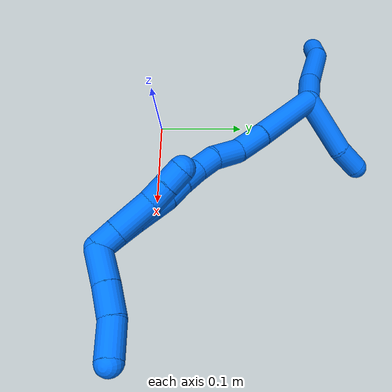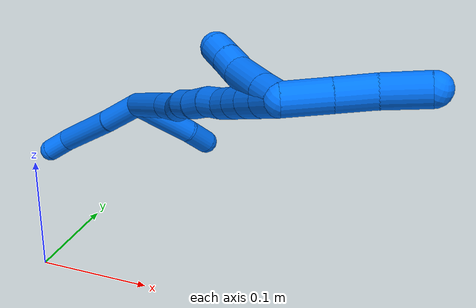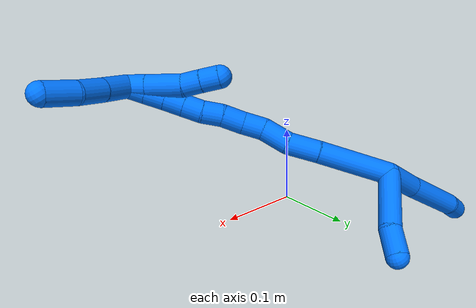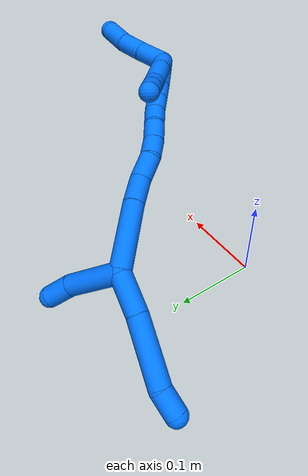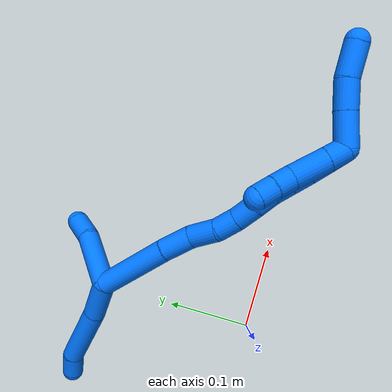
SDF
<sdf version="1.7">
 <world name="default">
  <model name="14">
   <static>0</static>
   <link name="14">
    <collision name="collision-cylinder-e_1_2_8">
     <pose>-0.012112 -0.000657 -0.019685 3.10825 -0.551323 -3.02386</pose>
     <geometry><cylinder><radius>0.0125</radius><length>0.046245</length></cylinder></geometry>
     <surface>
      <friction><ode><mu>1.16</mu><mu2>1.16</mu2><slip1>0</slip1><slip2>0</slip2></ode></friction>
      <contact><ode><kp>1e+06</kp><kd>1</kd><max_vel>0</max_vel><min_depth>0.001</min_depth></ode></contact>
     </surface>
    </collision>
    <visual name="visual-cylinder-e_1_2_8">
     <pose>-0.012112 -0.000657 -0.019685 3.10825 -0.551323 -3.02386</pose>
     <geometry><cylinder><radius>0.0125</radius><length>0.046245</length></cylinder></geometry>
     <material><ambient>0 0.462745 1 1</ambient></material>
    </visual>
    <collision name="collision-cylinder-e_2_8_9">
     <pose>-0.04427 0.001814 -0.071086 -3.04331 -0.561489 2.80374</pose>
     <geometry><cylinder><radius>0.0125</radius><length>0.075298</length></cylinder></geometry>
     <surface>
      <friction><ode><mu>1.16</mu><mu2>1.16</mu2><slip1>0</slip1><slip2>0</slip2></ode></friction>
      <contact><ode><kp>1e+06</kp><kd>1</kd><max_vel>0</max_vel><min_depth>0.001</min_depth></ode></contact>
     </surface>
    </collision>
    <visual name="visual-cylinder-e_2_8_9">
     <pose>-0.04427 0.001814 -0.071086 -3.04331 -0.561489 2.80374</pose>
     <geometry><cylinder><radius>0.0125</radius><length>0.075298</length></cylinder></geometry>
     <material><ambient>0 0.462745 1 1</ambient></material>
    </visual>
    <collision name="collision-cylinder-e_3_9_6">
     <pose>-0.071897 0.001817 -0.114429 2.87917 -0.56191 -2.2838</pose>
     <geometry><cylinder><radius>0.0125</radius><length>0.028457</length></cylinder></geometry>
     <surface>
      <friction><ode><mu>1.16</mu><mu2>1.16</mu2><slip1>0</slip1><slip2>0</slip2></ode></friction>
      <contact><ode><kp>1e+06</kp><kd>1</kd><max_vel>0</max_vel><min_depth>0.001</min_depth></ode></contact>
     </surface>
    </collision>
    <visual name="visual-cylinder-e_3_9_6">
     <pose>-0.071897 0.001817 -0.114429 2.87917 -0.56191 -2.2838</pose>
     <geometry><cylinder><radius>0.0125</radius><length>0.028457</length></cylinder></geometry>
     <material><ambient>0 0.462745 1 1</ambient></material>
    </visual>
    <collision name="collision-cylinder-e_1_2_10">
     <pose>0.029405 0.013862 -0.01145 -2.26118 1.02202 -1.74416</pose>
     <geometry><cylinder><radius>0.0125</radius><length>0.068933</length></cylinder></geometry>
     <surface>
      <friction><ode><mu>1.16</mu><mu2>1.16</mu2><slip1>0</slip1><slip2>0</slip2></ode></friction>
      <contact><ode><kp>1e+06</kp><kd>1</kd><max_vel>0</max_vel><min_depth>0.001</min_depth></ode></contact>
     </surface>
    </collision>
    <visual name="visual-cylinder-e_1_2_10">
     <pose>0.029405 0.013862 -0.01145 -2.26118 1.02202 -1.74416</pose>
     <geometry><cylinder><radius>0.0125</radius><length>0.068933</length></cylinder></geometry>
     <material><ambient>0 0.462745 1 1</ambient></material>
    </visual>
    <collision name="collision-cylinder-e_2_10_5">
     <pose>0.069765 0.035602 -0.030596 -2.34449 0.782681 -1.5505</pose>
     <geometry><cylinder><radius>0.0125</radius><length>0.031067</length></cylinder></geometry>
     <surface>
      <friction><ode><mu>1.16</mu><mu2>1.16</mu2><slip1>0</slip1><slip2>0</slip2></ode></friction>
      <contact><ode><kp>1e+06</kp><kd>1</kd><max_vel>0</max_vel><min_depth>0.001</min_depth></ode></contact>
     </surface>
    </collision>
    <visual name="visual-cylinder-e_2_10_5">
     <pose>0.069765 0.035602 -0.030596 -2.34449 0.782681 -1.5505</pose>
     <geometry><cylinder><radius>0.0125</radius><length>0.031067</length></cylinder></geometry>
     <material><ambient>0 0.462745 1 1</ambient></material>
    </visual>
    <collision name="collision-cylinder-e_1_2_11">
     <pose>0.017986 -0.023821 0.028627 0.694018 0.449916 0.165134</pose>
     <geometry><cylinder><radius>0.0125</radius><length>0.082716</length></cylinder></geometry>
     <surface>
      <friction><ode><mu>1.16</mu><mu2>1.16</mu2><slip1>0</slip1><slip2>0</slip2></ode></friction>
      <contact><ode><kp>1e+06</kp><kd>1</kd><max_vel>0</max_vel><min_depth>0.001</min_depth></ode></contact>
     </surface>
    </collision>
    <visual name="visual-cylinder-e_1_2_11">
     <pose>0.017986 -0.023821 0.028627 0.694018 0.449916 0.165134</pose>
     <geometry><cylinder><radius>0.0125</radius><length>0.082716</length></cylinder></geometry>
     <material><ambient>0 0.462745 1 1</ambient></material>
    </visual>
    <collision name="collision-cylinder-e_2_11_12">
     <pose>0.043257 -0.05865 0.068483 0.775493 0.433856 0.179546</pose>
     <geometry><cylinder><radius>0.0125</radius><length>0.034659</length></cylinder></geometry>
     <surface>
      <friction><ode><mu>1.16</mu><mu2>1.16</mu2><slip1>0</slip1><slip2>0</slip2></ode></friction>
      <contact><ode><kp>1e+06</kp><kd>1</kd><max_vel>0</max_vel><min_depth>0.001</min_depth></ode></contact>
     </surface>
    </collision>
    <visual name="visual-cylinder-e_2_11_12">
     <pose>0.043257 -0.05865 0.068483 0.775493 0.433856 0.179546</pose>
     <geometry><cylinder><radius>0.0125</radius><length>0.034659</length></cylinder></geometry>
     <material><ambient>0 0.462745 1 1</ambient></material>
    </visual>
    <collision name="collision-cylinder-e_3_12_13">
     <pose>0.053038 -0.079694 0.091253 0.715696 0.161775 0.060609</pose>
     <geometry><cylinder><radius>0.0125</radius><length>0.030994</length></cylinder></geometry>
     <surface>
      <friction><ode><mu>1.16</mu><mu2>1.16</mu2><slip1>0</slip1><slip2>0</slip2></ode></friction>
      <contact><ode><kp>1e+06</kp><kd>1</kd><max_vel>0</max_vel><min_depth>0.001</min_depth></ode></contact>
     </surface>
    </collision>
    <visual name="visual-cylinder-e_3_12_13">
     <pose>0.053038 -0.079694 0.091253 0.715696 0.161775 0.060609</pose>
     <geometry><cylinder><radius>0.0125</radius><length>0.030994</length></cylinder></geometry>
     <material><ambient>0 0.462745 1 1</ambient></material>
    </visual>
    <collision name="collision-cylinder-e_4_13_14">
     <pose>0.060736 -0.096703 0.110923 0.709091 0.452153 0.169883</pose>
     <geometry><cylinder><radius>0.0125</radius><length>0.023813</length></cylinder></geometry>
     <surface>
      <friction><ode><mu>1.16</mu><mu2>1.16</mu2><slip1>0</slip1><slip2>0</slip2></ode></friction>
      <contact><ode><kp>1e+06</kp><kd>1</kd><max_vel>0</max_vel><min_depth>0.001</min_depth></ode></contact>
     </surface>
    </collision>
    <visual name="visual-cylinder-e_4_13_14">
     <pose>0.060736 -0.096703 0.110923 0.709091 0.452153 0.169883</pose>
     <geometry><cylinder><radius>0.0125</radius><length>0.023813</length></cylinder></geometry>
     <material><ambient>0 0.462745 1 1</ambient></material>
    </visual>
    <collision name="collision-cylinder-e_5_14_15">
     <pose>0.071426 -0.109188 0.128179 0.543282 0.475364 0.134748</pose>
     <geometry><cylinder><radius>0.0125</radius><length>0.023984</length></cylinder></geometry>
     <surface>
      <friction><ode><mu>1.16</mu><mu2>1.16</mu2><slip1>0</slip1><slip2>0</slip2></ode></friction>
      <contact><ode><kp>1e+06</kp><kd>1</kd><max_vel>0</max_vel><min_depth>0.001</min_depth></ode></contact>
     </surface>
    </collision>
    <visual name="visual-cylinder-e_5_14_15">
     <pose>0.071426 -0.109188 0.128179 0.543282 0.475364 0.134748</pose>
     <geometry><cylinder><radius>0.0125</radius><length>0.023984</length></cylinder></geometry>
     <material><ambient>0 0.462745 1 1</ambient></material>
    </visual>
    <collision name="collision-cylinder-e_6_15_16">
     <pose>0.083121 -0.120369 0.144264 0.683639 0.605025 0.221169</pose>
     <geometry><cylinder><radius>0.0125</radius><length>0.021823</length></cylinder></geometry>
     <surface>
      <friction><ode><mu>1.16</mu><mu2>1.16</mu2><slip1>0</slip1><slip2>0</slip2></ode></friction>
      <contact><ode><kp>1e+06</kp><kd>1</kd><max_vel>0</max_vel><min_depth>0.001</min_depth></ode></contact>
     </surface>
    </collision>
    <visual name="visual-cylinder-e_6_15_16">
     <pose>0.083121 -0.120369 0.144264 0.683639 0.605025 0.221169</pose>
     <geometry><cylinder><radius>0.0125</radius><length>0.021823</length></cylinder></geometry>
     <material><ambient>0 0.462745 1 1</ambient></material>
    </visual>
    <collision name="collision-cylinder-e_7_16_17">
     <pose>0.093521 -0.131643 0.158554 0.652756 0.426498 0.14633</pose>
     <geometry><cylinder><radius>0.0125</radius><length>0.020275</length></cylinder></geometry>
     <surface>
      <friction><ode><mu>1.16</mu><mu2>1.16</mu2><slip1>0</slip1><slip2>0</slip2></ode></friction>
      <contact><ode><kp>1e+06</kp><kd>1</kd><max_vel>0</max_vel><min_depth>0.001</min_depth></ode></contact>
     </surface>
    </collision>
    <visual name="visual-cylinder-e_7_16_17">
     <pose>0.093521 -0.131643 0.158554 0.652756 0.426498 0.14633</pose>
     <geometry><cylinder><radius>0.0125</radius><length>0.020275</length></cylinder></geometry>
     <material><ambient>0 0.462745 1 1</ambient></material>
    </visual>
    <collision name="collision-cylinder-e_8_17_18">
     <pose>0.101981 -0.142946 0.173309 0.65456 0.427745 0.147203</pose>
     <geometry><cylinder><radius>0.0125</radius><length>0.020567</length></cylinder></geometry>
     <surface>
      <friction><ode><mu>1.16</mu><mu2>1.16</mu2><slip1>0</slip1><slip2>0</slip2></ode></friction>
      <contact><ode><kp>1e+06</kp><kd>1</kd><max_vel>0</max_vel><min_depth>0.001</min_depth></ode></contact>
     </surface>
    </collision>
    <visual name="visual-cylinder-e_8_17_18">
     <pose>0.101981 -0.142946 0.173309 0.65456 0.427745 0.147203</pose>
     <geometry><cylinder><radius>0.0125</radius><length>0.020567</length></cylinder></geometry>
     <material><ambient>0 0.462745 1 1</ambient></material>
    </visual>
    <collision name="collision-cylinder-e_9_18_19">
     <pose>0.110864 -0.154311 0.188249 0.646069 0.455937 0.155019</pose>
     <geometry><cylinder><radius>0.0125</radius><length>0.020972</length></cylinder></geometry>
     <surface>
      <friction><ode><mu>1.16</mu><mu2>1.16</mu2><slip1>0</slip1><slip2>0</slip2></ode></friction>
      <contact><ode><kp>1e+06</kp><kd>1</kd><max_vel>0</max_vel><min_depth>0.001</min_depth></ode></contact>
     </surface>
    </collision>
    <visual name="visual-cylinder-e_9_18_19">
     <pose>0.110864 -0.154311 0.188249 0.646069 0.455937 0.155019</pose>
     <geometry><cylinder><radius>0.0125</radius><length>0.020972</length></cylinder></geometry>
     <material><ambient>0 0.462745 1 1</ambient></material>
    </visual>
    <collision name="collision-cylinder-e_10_19_1">
     <pose>0.119989 -0.165324 0.203052 0.632954 0.462758 0.154005</pose>
     <geometry><cylinder><radius>0.0125</radius><length>0.020197</length></cylinder></geometry>
     <surface>
      <friction><ode><mu>1.16</mu><mu2>1.16</mu2><slip1>0</slip1><slip2>0</slip2></ode></friction>
      <contact><ode><kp>1e+06</kp><kd>1</kd><max_vel>0</max_vel><min_depth>0.001</min_depth></ode></contact>
     </surface>
    </collision>
    <visual name="visual-cylinder-e_10_19_1">
     <pose>0.119989 -0.165324 0.203052 0.632954 0.462758 0.154005</pose>
     <geometry><cylinder><radius>0.0125</radius><length>0.020197</length></cylinder></geometry>
     <material><ambient>0 0.462745 1 1</ambient></material>
    </visual>
    <collision name="collision-cylinder-e_1_1_20">
     <pose>0.139513 -0.164826 0.217866 -0.660071 1.00528 -0.37228</pose>
     <geometry><cylinder><radius>0.0125</radius><length>0.035571</length></cylinder></geometry>
     <surface>
      <friction><ode><mu>1.16</mu><mu2>1.16</mu2><slip1>0</slip1><slip2>0</slip2></ode></friction>
      <contact><ode><kp>1e+06</kp><kd>1</kd><max_vel>0</max_vel><min_depth>0.001</min_depth></ode></contact>
     </surface>
    </collision>
    <visual name="visual-cylinder-e_1_1_20">
     <pose>0.139513 -0.164826 0.217866 -0.660071 1.00528 -0.37228</pose>
     <geometry><cylinder><radius>0.0125</radius><length>0.035571</length></cylinder></geometry>
     <material><ambient>0 0.462745 1 1</ambient></material>
    </visual>
    <collision name="collision-cylinder-e_2_20_21">
     <pose>0.1672 -0.154591 0.232198 -0.573125 1.00214 -0.320021</pose>
     <geometry><cylinder><radius>0.0125</radius><length>0.030073</length></cylinder></geometry>
     <surface>
      <friction><ode><mu>1.16</mu><mu2>1.16</mu2><slip1>0</slip1><slip2>0</slip2></ode></friction>
      <contact><ode><kp>1e+06</kp><kd>1</kd><max_vel>0</max_vel><min_depth>0.001</min_depth></ode></contact>
     </surface>
    </collision>
    <visual name="visual-cylinder-e_2_20_21">
     <pose>0.1672 -0.154591 0.232198 -0.573125 1.00214 -0.320021</pose>
     <geometry><cylinder><radius>0.0125</radius><length>0.030073</length></cylinder></geometry>
     <material><ambient>0 0.462745 1 1</ambient></material>
    </visual>
    <collision name="collision-cylinder-e_3_21_4">
     <pose>0.194316 -0.148983 0.248217 -0.131355 0.999038 -0.07175</pose>
     <geometry><cylinder><radius>0.0125</radius><length>0.034356</length></cylinder></geometry>
     <surface>
      <friction><ode><mu>1.16</mu><mu2>1.16</mu2><slip1>0</slip1><slip2>0</slip2></ode></friction>
      <contact><ode><kp>1e+06</kp><kd>1</kd><max_vel>0</max_vel><min_depth>0.001</min_depth></ode></contact>
     </surface>
    </collision>
    <visual name="visual-cylinder-e_3_21_4">
     <pose>0.194316 -0.148983 0.248217 -0.131355 0.999038 -0.07175</pose>
     <geometry><cylinder><radius>0.0125</radius><length>0.034356</length></cylinder></geometry>
     <material><ambient>0 0.462745 1 1</ambient></material>
    </visual>
    <collision name="collision-cylinder-e_1_1_22">
     <pose>0.118461 -0.163383 0.205927 -2.11514 -0.616547 1.02854</pose>
     <geometry><cylinder><radius>0.0125</radius><length>0.020879</length></cylinder></geometry>
     <surface>
      <friction><ode><mu>1.16</mu><mu2>1.16</mu2><slip1>0</slip1><slip2>0</slip2></ode></friction>
      <contact><ode><kp>1e+06</kp><kd>1</kd><max_vel>0</max_vel><min_depth>0.001</min_depth></ode></contact>
     </surface>
    </collision>
    <visual name="visual-cylinder-e_1_1_22">
     <pose>0.118461 -0.163383 0.205927 -2.11514 -0.616547 1.02854</pose>
     <geometry><cylinder><radius>0.0125</radius><length>0.020879</length></cylinder></geometry>
     <material><ambient>0 0.462745 1 1</ambient></material>
    </visual>
    <collision name="collision-cylinder-e_2_22_23">
     <pose>0.101372 -0.14213 0.19369 -2.08159 -0.6042 0.977654</pose>
     <geometry><cylinder><radius>0.0125</radius><length>0.038909</length></cylinder></geometry>
     <surface>
      <friction><ode><mu>1.16</mu><mu2>1.16</mu2><slip1>0</slip1><slip2>0</slip2></ode></friction>
      <contact><ode><kp>1e+06</kp><kd>1</kd><max_vel>0</max_vel><min_depth>0.001</min_depth></ode></contact>
     </surface>
    </collision>
    <visual name="visual-cylinder-e_2_22_23">
     <pose>0.101372 -0.14213 0.19369 -2.08159 -0.6042 0.977654</pose>
     <geometry><cylinder><radius>0.0125</radius><length>0.038909</length></cylinder></geometry>
     <material><ambient>0 0.462745 1 1</ambient></material>
    </visual>
    <collision name="collision-cylinder-e_3_23_24">
     <pose>0.083625 -0.120963 0.183654 -1.86849 -0.726652 0.950118</pose>
     <geometry><cylinder><radius>0.0125</radius><length>0.020154</length></cylinder></geometry>
     <surface>
      <friction><ode><mu>1.16</mu><mu2>1.16</mu2><slip1>0</slip1><slip2>0</slip2></ode></friction>
      <contact><ode><kp>1e+06</kp><kd>1</kd><max_vel>0</max_vel><min_depth>0.001</min_depth></ode></contact>
     </surface>
    </collision>
    <visual name="visual-cylinder-e_3_23_24">
     <pose>0.083625 -0.120963 0.183654 -1.86849 -0.726652 0.950118</pose>
     <geometry><cylinder><radius>0.0125</radius><length>0.020154</length></cylinder></geometry>
     <material><ambient>0 0.462745 1 1</ambient></material>
    </visual>
    <collision name="collision-cylinder-e_4_24_3">
     <pose>0.070207 -0.106708 0.179076 -1.89474 -0.734755 0.982794</pose>
     <geometry><cylinder><radius>0.0125</radius><length>0.020058</length></cylinder></geometry>
     <surface>
      <friction><ode><mu>1.16</mu><mu2>1.16</mu2><slip1>0</slip1><slip2>0</slip2></ode></friction>
      <contact><ode><kp>1e+06</kp><kd>1</kd><max_vel>0</max_vel><min_depth>0.001</min_depth></ode></contact>
     </surface>
    </collision>
    <visual name="visual-cylinder-e_4_24_3">
     <pose>0.070207 -0.106708 0.179076 -1.89474 -0.734755 0.982794</pose>
     <geometry><cylinder><radius>0.0125</radius><length>0.020058</length></cylinder></geometry>
     <material><ambient>0 0.462745 1 1</ambient></material>
    </visual>
    <collision name="collision-sphere-3">
     <pose>0.063483 -0.099654 0.176707 0 -0 0</pose>
     <geometry><sphere><radius>0.0125</radius></sphere></geometry>
     <surface>
      <friction><ode><mu>1.16</mu><mu2>1.16</mu2><slip1>0</slip1><slip2>0</slip2></ode></friction>
      <contact><ode><kp>1e+06</kp><kd>1</kd><max_vel>0</max_vel><min_depth>0.001</min_depth></ode></contact>
     </surface>
    </collision>
    <visual name="visual-sphere-3">
     <pose>0.063483 -0.099654 0.176707 0 -0 0</pose>
     <geometry><sphere><radius>0.0125</radius></sphere></geometry>
     <material><ambient>0 0.462745 1 1</ambient></material>
    </visual>
    <collision name="collision-sphere-24">
     <pose>0.07693 -0.113763 0.181444 0 -0 0</pose>
     <geometry><sphere><radius>0.0125</radius></sphere></geometry>
     <surface>
      <friction><ode><mu>1.16</mu><mu2>1.16</mu2><slip1>0</slip1><slip2>0</slip2></ode></friction>
      <contact><ode><kp>1e+06</kp><kd>1</kd><max_vel>0</max_vel><min_depth>0.001</min_depth></ode></contact>
     </surface>
    </collision>
    <visual name="visual-sphere-24">
     <pose>0.07693 -0.113763 0.181444 0 -0 0</pose>
     <geometry><sphere><radius>0.0125</radius></sphere></geometry>
     <material><ambient>0 0.462745 1 1</ambient></material>
    </visual>
    <collision name="collision-sphere-23">
     <pose>0.09032 -0.128164 0.185863 0 -0 0</pose>
     <geometry><sphere><radius>0.0125</radius></sphere></geometry>
     <surface>
      <friction><ode><mu>1.16</mu><mu2>1.16</mu2><slip1>0</slip1><slip2>0</slip2></ode></friction>
      <contact><ode><kp>1e+06</kp><kd>1</kd><max_vel>0</max_vel><min_depth>0.001</min_depth></ode></contact>
     </surface>
    </collision>
    <visual name="visual-sphere-23">
     <pose>0.09032 -0.128164 0.185863 0 -0 0</pose>
     <geometry><sphere><radius>0.0125</radius></sphere></geometry>
     <material><ambient>0 0.462745 1 1</ambient></material>
    </visual>
    <collision name="collision-sphere-22">
     <pose>0.112424 -0.156097 0.201517 0 -0 0</pose>
     <geometry><sphere><radius>0.0125</radius></sphere></geometry>
     <surface>
      <friction><ode><mu>1.16</mu><mu2>1.16</mu2><slip1>0</slip1><slip2>0</slip2></ode></friction>
      <contact><ode><kp>1e+06</kp><kd>1</kd><max_vel>0</max_vel><min_depth>0.001</min_depth></ode></contact>
     </surface>
    </collision>
    <visual name="visual-sphere-22">
     <pose>0.112424 -0.156097 0.201517 0 -0 0</pose>
     <geometry><sphere><radius>0.0125</radius></sphere></geometry>
     <material><ambient>0 0.462745 1 1</ambient></material>
    </visual>
    <collision name="collision-sphere-4">
     <pose>0.208762 -0.147765 0.257432 0 -0 0</pose>
     <geometry><sphere><radius>0.0125</radius></sphere></geometry>
     <surface>
      <friction><ode><mu>1.16</mu><mu2>1.16</mu2><slip1>0</slip1><slip2>0</slip2></ode></friction>
      <contact><ode><kp>1e+06</kp><kd>1</kd><max_vel>0</max_vel><min_depth>0.001</min_depth></ode></contact>
     </surface>
    </collision>
    <visual name="visual-sphere-4">
     <pose>0.208762 -0.147765 0.257432 0 -0 0</pose>
     <geometry><sphere><radius>0.0125</radius></sphere></geometry>
     <material><ambient>0 0.462745 1 1</ambient></material>
    </visual>
    <collision name="collision-sphere-21">
     <pose>0.17987 -0.1502 0.239001 0 -0 0</pose>
     <geometry><sphere><radius>0.0125</radius></sphere></geometry>
     <surface>
      <friction><ode><mu>1.16</mu><mu2>1.16</mu2><slip1>0</slip1><slip2>0</slip2></ode></friction>
      <contact><ode><kp>1e+06</kp><kd>1</kd><max_vel>0</max_vel><min_depth>0.001</min_depth></ode></contact>
     </surface>
    </collision>
    <visual name="visual-sphere-21">
     <pose>0.17987 -0.1502 0.239001 0 -0 0</pose>
     <geometry><sphere><radius>0.0125</radius></sphere></geometry>
     <material><ambient>0 0.462745 1 1</ambient></material>
    </visual>
    <collision name="collision-sphere-20">
     <pose>0.15453 -0.158982 0.225395 0 -0 0</pose>
     <geometry><sphere><radius>0.0125</radius></sphere></geometry>
     <surface>
      <friction><ode><mu>1.16</mu><mu2>1.16</mu2><slip1>0</slip1><slip2>0</slip2></ode></friction>
      <contact><ode><kp>1e+06</kp><kd>1</kd><max_vel>0</max_vel><min_depth>0.001</min_depth></ode></contact>
     </surface>
    </collision>
    <visual name="visual-sphere-20">
     <pose>0.15453 -0.158982 0.225395 0 -0 0</pose>
     <geometry><sphere><radius>0.0125</radius></sphere></geometry>
     <material><ambient>0 0.462745 1 1</ambient></material>
    </visual>
    <collision name="collision-sphere-5">
     <pose>0.080719 0.043481 -0.038292 0 -0 0</pose>
     <geometry><sphere><radius>0.0125</radius></sphere></geometry>
     <surface>
      <friction><ode><mu>1.16</mu><mu2>1.16</mu2><slip1>0</slip1><slip2>0</slip2></ode></friction>
      <contact><ode><kp>1e+06</kp><kd>1</kd><max_vel>0</max_vel><min_depth>0.001</min_depth></ode></contact>
     </surface>
    </collision>
    <visual name="visual-sphere-5">
     <pose>0.080719 0.043481 -0.038292 0 -0 0</pose>
     <geometry><sphere><radius>0.0125</radius></sphere></geometry>
     <material><ambient>0 0.462745 1 1</ambient></material>
    </visual>
    <collision name="collision-sphere-10">
     <pose>0.058811 0.027724 -0.022899 0 -0 0</pose>
     <geometry><sphere><radius>0.0125</radius></sphere></geometry>
     <surface>
      <friction><ode><mu>1.16</mu><mu2>1.16</mu2><slip1>0</slip1><slip2>0</slip2></ode></friction>
      <contact><ode><kp>1e+06</kp><kd>1</kd><max_vel>0</max_vel><min_depth>0.001</min_depth></ode></contact>
     </surface>
    </collision>
    <visual name="visual-sphere-10">
     <pose>0.058811 0.027724 -0.022899 0 -0 0</pose>
     <geometry><sphere><radius>0.0125</radius></sphere></geometry>
     <material><ambient>0 0.462745 1 1</ambient></material>
    </visual>
    <collision name="collision-sphere-6">
     <pose>-0.079478 -0.001306 -0.126058 0 -0 0</pose>
     <geometry><sphere><radius>0.0125</radius></sphere></geometry>
     <surface>
      <friction><ode><mu>1.16</mu><mu2>1.16</mu2><slip1>0</slip1><slip2>0</slip2></ode></friction>
      <contact><ode><kp>1e+06</kp><kd>1</kd><max_vel>0</max_vel><min_depth>0.001</min_depth></ode></contact>
     </surface>
    </collision>
    <visual name="visual-sphere-6">
     <pose>-0.079478 -0.001306 -0.126058 0 -0 0</pose>
     <geometry><sphere><radius>0.0125</radius></sphere></geometry>
     <material><ambient>0 0.462745 1 1</ambient></material>
    </visual>
    <collision name="collision-sphere-9">
     <pose>-0.064316 0.004941 -0.1028 0 -0 0</pose>
     <geometry><sphere><radius>0.0125</radius></sphere></geometry>
     <surface>
      <friction><ode><mu>1.16</mu><mu2>1.16</mu2><slip1>0</slip1><slip2>0</slip2></ode></friction>
      <contact><ode><kp>1e+06</kp><kd>1</kd><max_vel>0</max_vel><min_depth>0.001</min_depth></ode></contact>
     </surface>
    </collision>
    <visual name="visual-sphere-9">
     <pose>-0.064316 0.004941 -0.1028 0 -0 0</pose>
     <geometry><sphere><radius>0.0125</radius></sphere></geometry>
     <material><ambient>0 0.462745 1 1</ambient></material>
    </visual>
    <collision name="collision-sphere-2">
     <geometry><sphere><radius>0.0125</radius></sphere></geometry>
     <surface>
      <friction><ode><mu>1.16</mu><mu2>1.16</mu2><slip1>0</slip1><slip2>0</slip2></ode></friction>
      <contact><ode><kp>1e+06</kp><kd>1</kd><max_vel>0</max_vel><min_depth>0.001</min_depth></ode></contact>
     </surface>
    </collision>
    <visual name="visual-sphere-2">
     <geometry><sphere><radius>0.0125</radius></sphere></geometry>
     <material><ambient>0 0.462745 1 1</ambient></material>
    </visual>
    <collision name="collision-sphere-19">
     <pose>0.115481 -0.159979 0.195767 0 -0 0</pose>
     <geometry><sphere><radius>0.0125</radius></sphere></geometry>
     <surface>
      <friction><ode><mu>1.16</mu><mu2>1.16</mu2><slip1>0</slip1><slip2>0</slip2></ode></friction>
      <contact><ode><kp>1e+06</kp><kd>1</kd><max_vel>0</max_vel><min_depth>0.001</min_depth></ode></contact>
     </surface>
    </collision>
    <visual name="visual-sphere-19">
     <pose>0.115481 -0.159979 0.195767 0 -0 0</pose>
     <geometry><sphere><radius>0.0125</radius></sphere></geometry>
     <material><ambient>0 0.462745 1 1</ambient></material>
    </visual>
    <collision name="collision-sphere-8">
     <pose>-0.024224 -0.001313 -0.039371 0 -0 0</pose>
     <geometry><sphere><radius>0.0125</radius></sphere></geometry>
     <surface>
      <friction><ode><mu>1.16</mu><mu2>1.16</mu2><slip1>0</slip1><slip2>0</slip2></ode></friction>
      <contact><ode><kp>1e+06</kp><kd>1</kd><max_vel>0</max_vel><min_depth>0.001</min_depth></ode></contact>
     </surface>
    </collision>
    <visual name="visual-sphere-8">
     <pose>-0.024224 -0.001313 -0.039371 0 -0 0</pose>
     <geometry><sphere><radius>0.0125</radius></sphere></geometry>
     <material><ambient>0 0.462745 1 1</ambient></material>
    </visual>
    <collision name="collision-sphere-11">
     <pose>0.035972 -0.047642 0.057254 0 -0 0</pose>
     <geometry><sphere><radius>0.0125</radius></sphere></geometry>
     <surface>
      <friction><ode><mu>1.16</mu><mu2>1.16</mu2><slip1>0</slip1><slip2>0</slip2></ode></friction>
      <contact><ode><kp>1e+06</kp><kd>1</kd><max_vel>0</max_vel><min_depth>0.001</min_depth></ode></contact>
     </surface>
    </collision>
    <visual name="visual-sphere-11">
     <pose>0.035972 -0.047642 0.057254 0 -0 0</pose>
     <geometry><sphere><radius>0.0125</radius></sphere></geometry>
     <material><ambient>0 0.462745 1 1</ambient></material>
    </visual>
    <collision name="collision-sphere-12">
     <pose>0.050542 -0.069658 0.079711 0 -0 0</pose>
     <geometry><sphere><radius>0.0125</radius></sphere></geometry>
     <surface>
      <friction><ode><mu>1.16</mu><mu2>1.16</mu2><slip1>0</slip1><slip2>0</slip2></ode></friction>
      <contact><ode><kp>1e+06</kp><kd>1</kd><max_vel>0</max_vel><min_depth>0.001</min_depth></ode></contact>
     </surface>
    </collision>
    <visual name="visual-sphere-12">
     <pose>0.050542 -0.069658 0.079711 0 -0 0</pose>
     <geometry><sphere><radius>0.0125</radius></sphere></geometry>
     <material><ambient>0 0.462745 1 1</ambient></material>
    </visual>
    <collision name="collision-sphere-13">
     <pose>0.055534 -0.089729 0.102795 0 -0 0</pose>
     <geometry><sphere><radius>0.0125</radius></sphere></geometry>
     <surface>
      <friction><ode><mu>1.16</mu><mu2>1.16</mu2><slip1>0</slip1><slip2>0</slip2></ode></friction>
      <contact><ode><kp>1e+06</kp><kd>1</kd><max_vel>0</max_vel><min_depth>0.001</min_depth></ode></contact>
     </surface>
    </collision>
    <visual name="visual-sphere-13">
     <pose>0.055534 -0.089729 0.102795 0 -0 0</pose>
     <geometry><sphere><radius>0.0125</radius></sphere></geometry>
     <material><ambient>0 0.462745 1 1</ambient></material>
    </visual>
    <collision name="collision-sphere-14">
     <pose>0.065938 -0.103677 0.119052 0 -0 0</pose>
     <geometry><sphere><radius>0.0125</radius></sphere></geometry>
     <surface>
      <friction><ode><mu>1.16</mu><mu2>1.16</mu2><slip1>0</slip1><slip2>0</slip2></ode></friction>
      <contact><ode><kp>1e+06</kp><kd>1</kd><max_vel>0</max_vel><min_depth>0.001</min_depth></ode></contact>
     </surface>
    </collision>
    <visual name="visual-sphere-14">
     <pose>0.065938 -0.103677 0.119052 0 -0 0</pose>
     <geometry><sphere><radius>0.0125</radius></sphere></geometry>
     <material><ambient>0 0.462745 1 1</ambient></material>
    </visual>
    <collision name="collision-sphere-15">
     <pose>0.076915 -0.1147 0.137306 0 -0 0</pose>
     <geometry><sphere><radius>0.0125</radius></sphere></geometry>
     <surface>
      <friction><ode><mu>1.16</mu><mu2>1.16</mu2><slip1>0</slip1><slip2>0</slip2></ode></friction>
      <contact><ode><kp>1e+06</kp><kd>1</kd><max_vel>0</max_vel><min_depth>0.001</min_depth></ode></contact>
     </surface>
    </collision>
    <visual name="visual-sphere-15">
     <pose>0.076915 -0.1147 0.137306 0 -0 0</pose>
     <geometry><sphere><radius>0.0125</radius></sphere></geometry>
     <material><ambient>0 0.462745 1 1</ambient></material>
    </visual>
    <collision name="collision-sphere-16">
     <pose>0.089327 -0.126038 0.151222 0 -0 0</pose>
     <geometry><sphere><radius>0.0125</radius></sphere></geometry>
     <surface>
      <friction><ode><mu>1.16</mu><mu2>1.16</mu2><slip1>0</slip1><slip2>0</slip2></ode></friction>
      <contact><ode><kp>1e+06</kp><kd>1</kd><max_vel>0</max_vel><min_depth>0.001</min_depth></ode></contact>
     </surface>
    </collision>
    <visual name="visual-sphere-16">
     <pose>0.089327 -0.126038 0.151222 0 -0 0</pose>
     <geometry><sphere><radius>0.0125</radius></sphere></geometry>
     <material><ambient>0 0.462745 1 1</ambient></material>
    </visual>
    <collision name="collision-sphere-17">
     <pose>0.097715 -0.137249 0.165886 0 -0 0</pose>
     <geometry><sphere><radius>0.0125</radius></sphere></geometry>
     <surface>
      <friction><ode><mu>1.16</mu><mu2>1.16</mu2><slip1>0</slip1><slip2>0</slip2></ode></friction>
      <contact><ode><kp>1e+06</kp><kd>1</kd><max_vel>0</max_vel><min_depth>0.001</min_depth></ode></contact>
     </surface>
    </collision>
    <visual name="visual-sphere-17">
     <pose>0.097715 -0.137249 0.165886 0 -0 0</pose>
     <geometry><sphere><radius>0.0125</radius></sphere></geometry>
     <material><ambient>0 0.462745 1 1</ambient></material>
    </visual>
    <collision name="collision-sphere-18">
     <pose>0.106247 -0.148642 0.180732 0 -0 0</pose>
     <geometry><sphere><radius>0.0125</radius></sphere></geometry>
     <surface>
      <friction><ode><mu>1.16</mu><mu2>1.16</mu2><slip1>0</slip1><slip2>0</slip2></ode></friction>
      <contact><ode><kp>1e+06</kp><kd>1</kd><max_vel>0</max_vel><min_depth>0.001</min_depth></ode></contact>
     </surface>
    </collision>
    <visual name="visual-sphere-18">
     <pose>0.106247 -0.148642 0.180732 0 -0 0</pose>
     <geometry><sphere><radius>0.0125</radius></sphere></geometry>
     <material><ambient>0 0.462745 1 1</ambient></material>
    </visual>
    <collision name="collision-sphere-1">
     <pose>0.124497 -0.170669 0.210338 0 -0 0</pose>
     <geometry><sphere><radius>0.0125</radius></sphere></geometry>
     <surface>
      <friction><ode><mu>1.16</mu><mu2>1.16</mu2><slip1>0</slip1><slip2>0</slip2></ode></friction>
      <contact><ode><kp>1e+06</kp><kd>1</kd><max_vel>0</max_vel><min_depth>0.001</min_depth></ode></contact>
     </surface>
    </collision>
    <visual name="visual-sphere-1">
     <pose>0.124497 -0.170669 0.210338 0 -0 0</pose>
     <geometry><sphere><radius>0.0125</radius></sphere></geometry>
     <material><ambient>0 0.462745 1 1</ambient></material>
    </visual>
    <inertial>
     <pose>0.057039 -0.070849 0.08319 0 -0 0</pose>
     <mass>0.75</mass>
     <inertia>
      <ixx>4.8e-05</ixx>
      <ixy>0</ixy>
      <ixz>0</ixz>
      <iyy>0.000148</iyy>
      <iyz>0</iyz>
      <izz>-1.7e-05</izz>
     </inertia>
    </inertial>
   </link>
   <pose>0.012084 0.178044 0.094549 0.252672 0.417252 0.106671</pose>
  </model>
 </world>
</sdf>
